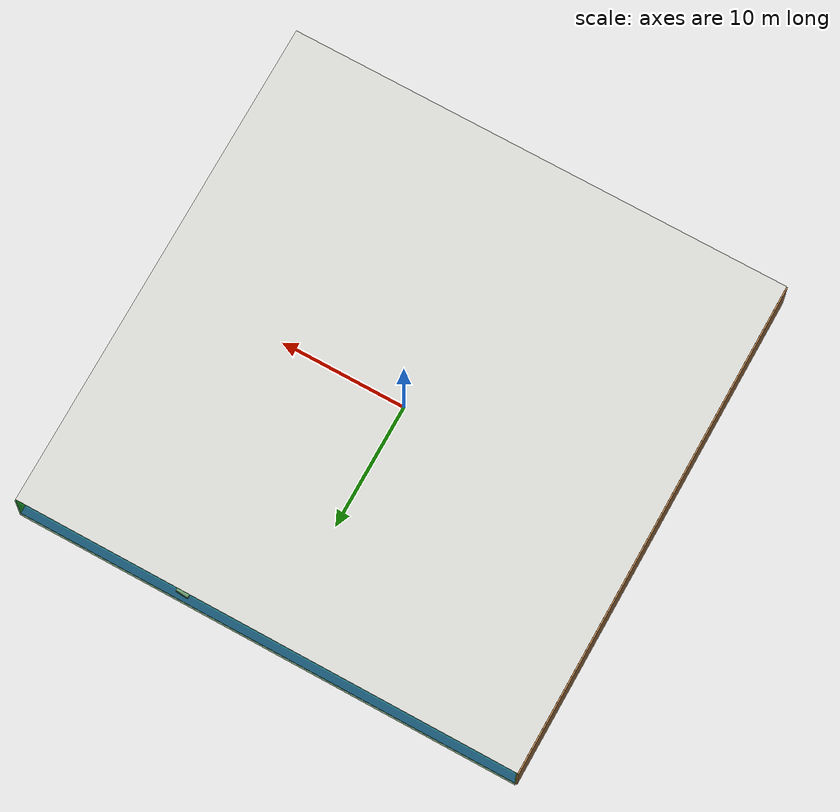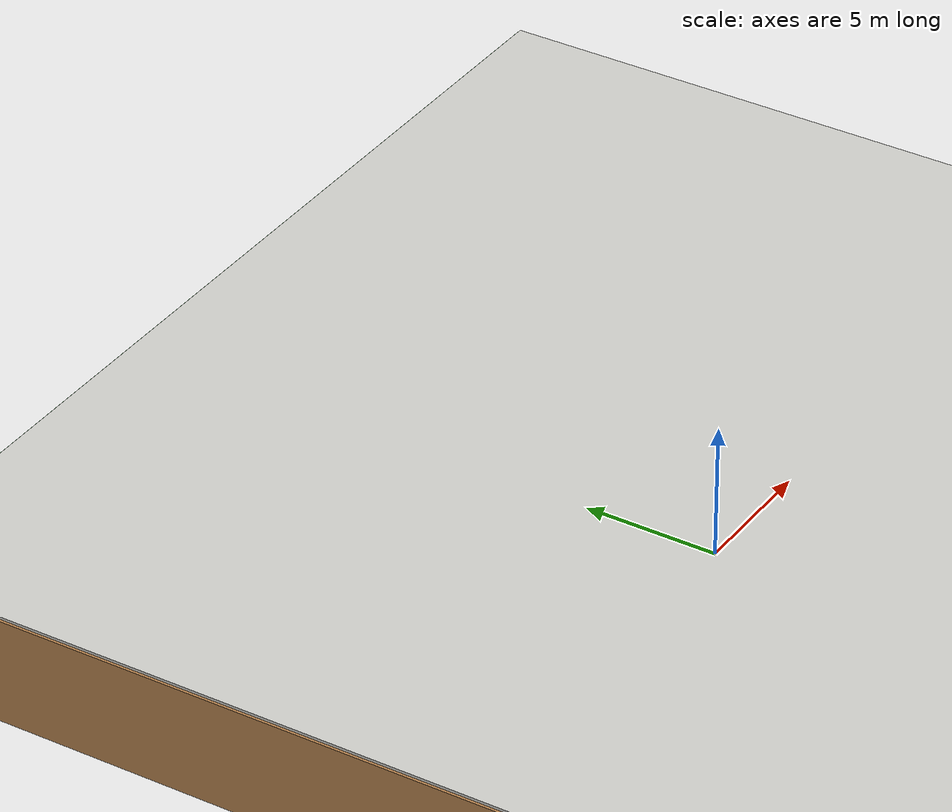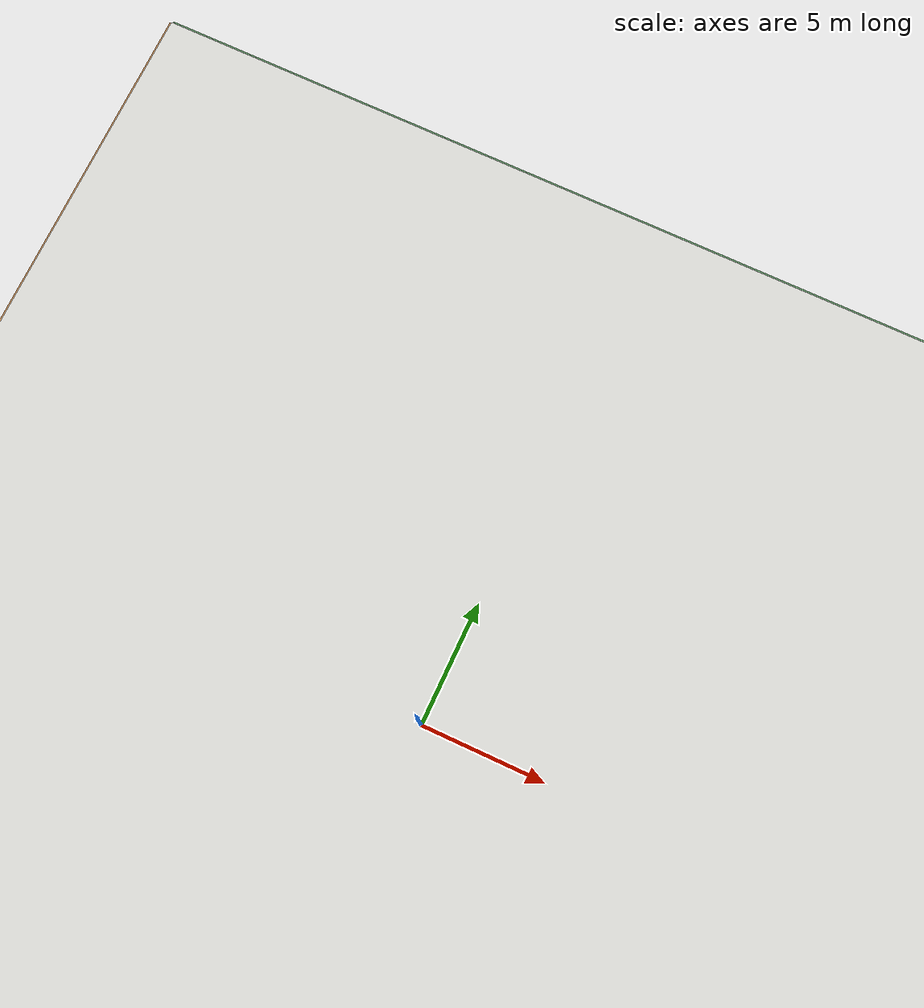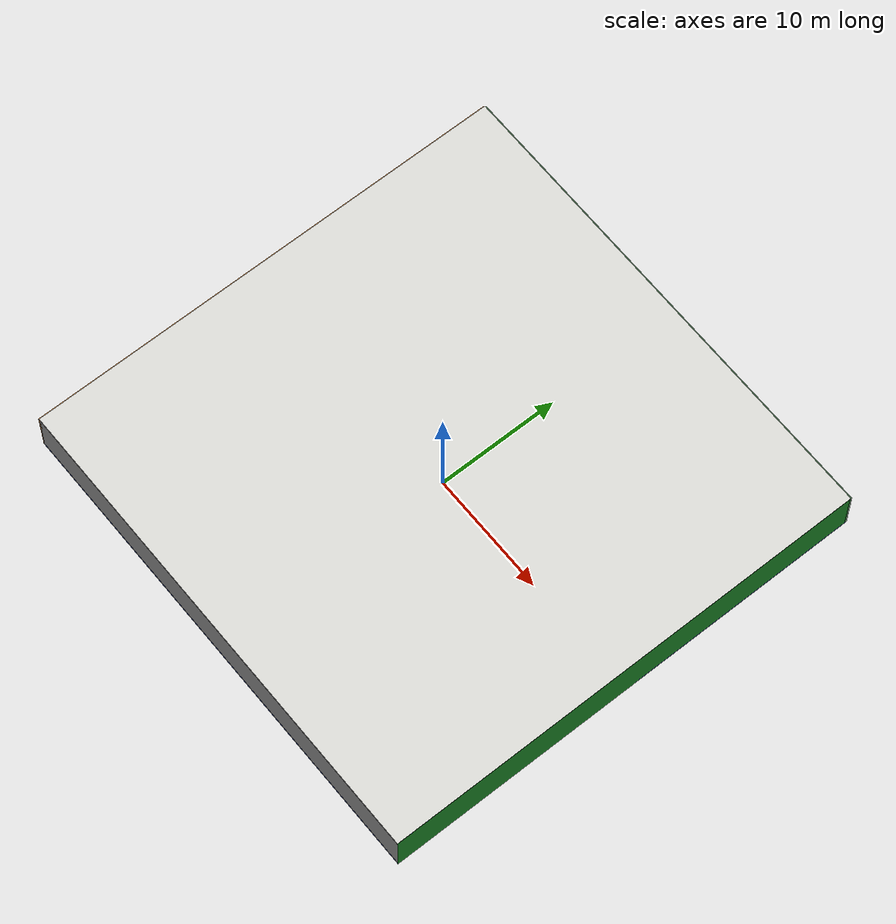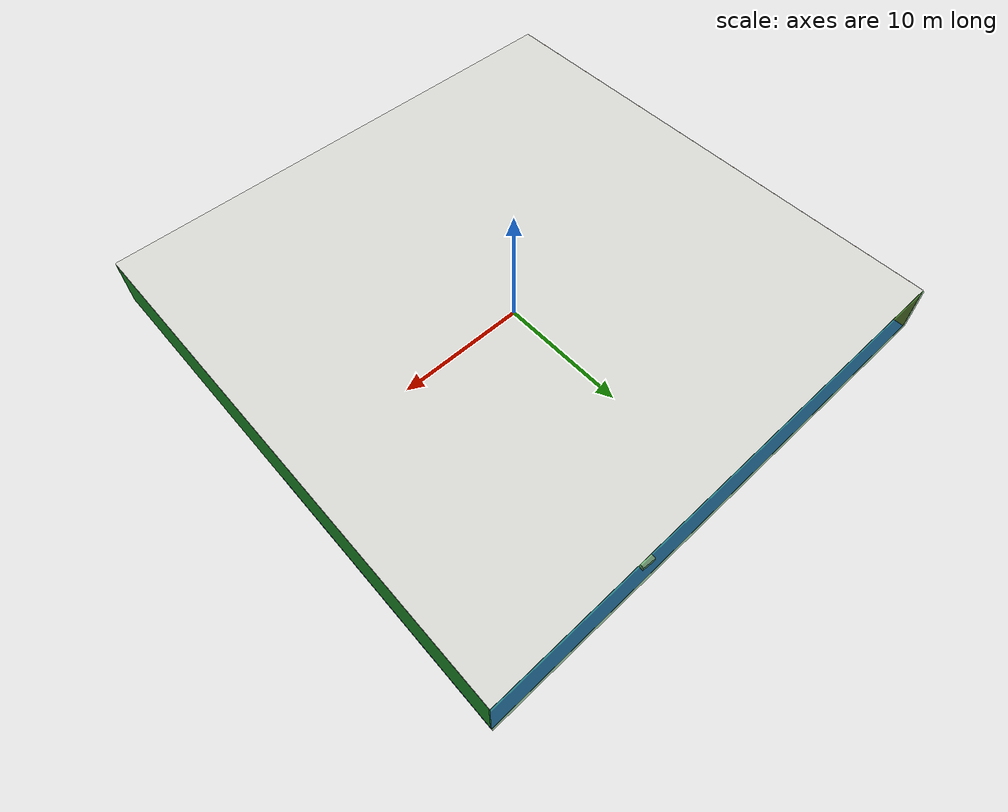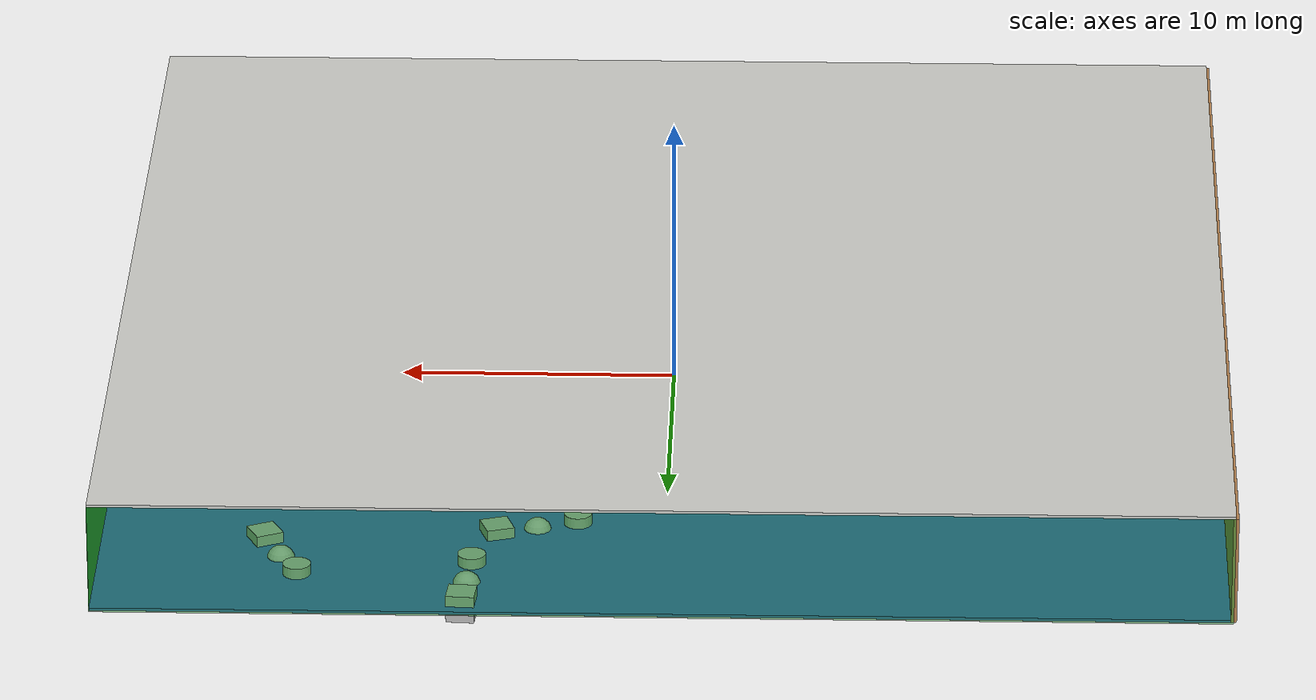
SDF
<sdf version="1.4">
 <world name="default">
  <physics type="ode">
   <max_step_size>0.001</max_step_size>
   <real_time_factor>1</real_time_factor>
   <real_time_update_rate>1000</real_time_update_rate>
   <gravity>0 0 -9.8</gravity>
  </physics>
  <scene><ambient>0.4 0.4 0.4 1</ambient><background>0.7 0.7 0.7 1</background><shadows>1</shadows></scene>
  <model name="Surrounding">
   <static>1</static>
   <link name="Ceiling">
    <collision name="Ceiling_Collision"><geometry><box><size>40 40 0.1</size></box></geometry></collision>
    <visual name="Ceiling_Visual">
     <geometry><box><size>40 40 0.1</size></box></geometry>
     <material>
      <script><uri>file://media/materials/scripts/gazebo.material</uri><name>Gazebo/CeilingTiled</name></script>
     </material>
    </visual>
    <pose>0 0 4.05 0 0 0</pose>
   </link>
   <link name="Wall_South">
    <collision name="Wall_South_Collision">
     <geometry><box><size>40 0 4</size></box></geometry>
     <pose>0 0 2 0 -0 0</pose>
    </collision>
    <visual name="Wall_South_Visual">
     <pose>0 0 2 0 -0 0</pose>
     <geometry><box><size>40 0 4</size></box></geometry>
     <material>
      <script><uri>file://media/materials/scripts/gazebo.material</uri><name>Gazebo/Grey</name></script>
     </material>
    </visual>
    <velocity_decay><linear>0</linear><angular>0</angular></velocity_decay>
    <pose>0 -20 0 0 -0 0</pose>
   </link>
   <link name="Wall_East">
    <collision name="Wall_21_Collision">
     <geometry><box><size>40 0 4</size></box></geometry>
     <pose>0 0 2 0 -0 0</pose>
    </collision>
    <visual name="Wall_21_Visual">
     <pose>0 0 2 0 -0 0</pose>
     <geometry><box><size>40 0 4</size></box></geometry>
     <material>
      <script><uri>file://media/materials/scripts/gazebo.material</uri><name>Gazebo/Green</name></script>
     </material>
    </visual>
    <velocity_decay><linear>0</linear><angular>0</angular></velocity_decay>
    <pose>20 0 0 0 -0 1.5708</pose>
   </link>
   <link name="Wall_North">
    <collision name="Wall_22_Collision">
     <geometry><box><size>40 0.2 4</size></box></geometry>
     <pose>0 0 2 0 -0 0</pose>
    </collision>
    <visual name="Wall_22_Visual">
     <pose>0 0 2 0 -0 0</pose>
     <geometry><box><size>40 0.2 4</size></box></geometry>
     <material>
      <script><uri>file://media/materials/scripts/gazebo.material</uri><name>Gazebo/GreenTransparent</name></script>
     </material>
    </visual>
    <velocity_decay><linear>0</linear><angular>0</angular></velocity_decay>
    <pose>0 20 0 0 -0 0</pose>
   </link>
   <link name="Wall_West">
    <collision name="Wall_23_Collision">
     <geometry><box><size>40 0.2 4</size></box></geometry>
     <pose>0 0 2 0 -0 0</pose>
    </collision>
    <visual name="Wall_23_Visual">
     <pose>0 0 2 0 -0 0</pose>
     <geometry><box><size>40 0.2 4</size></box></geometry>
     <material>
      <script><uri>file://media/materials/scripts/gazebo.material</uri><name>Gazebo/Wood</name></script>
     </material>
    </visual>
    <velocity_decay><linear>0</linear><angular>0</angular></velocity_decay>
    <pose>-20 0 0 0 0 -1.5708</pose>
   </link>
   <link name="Ground_link">
    <collision name="collision">
     <pose>0 0 .05 0 -0 0</pose>
     <geometry><box><size>40 40 0.1</size></box></geometry>
    </collision>
    <visual name="visual">
     <pose>0 0 .05 0 -0 0</pose>
     <geometry><box><size>40 40 0.1</size></box></geometry>
     <material>
      <script><uri>file://media/materials/scripts/gazebo.material</uri><name>Gazebo/BlueGlow</name></script>
     </material>
    </visual>
   </link>
   <static>1</static>
  </model>
  <spherical_coordinates>
   <surface_model>EARTH_WGS84</surface_model>
   <latitude_deg>0</latitude_deg>
   <longitude_deg>0</longitude_deg>
   <elevation>0</elevation>
   <heading_deg>0</heading_deg>
  </spherical_coordinates>
  <light name="lightball_0" type="diffuse">
   <diffuse>0.8 0.8 0.8 1</diffuse>
   <specular>0.2 0.2 0.2 1</specular>
   <attenuation>
    <range>100</range>
    <constant>0.7</constant>
    <linear>0.01</linear>
    <quadratic>0.001</quadratic>
   </attenuation>
   <direction>-0.5 0.1 -0.9</direction>
   <pose>9.72297077495 -6.86279532287 1.45989051367 0 0 0</pose>
  </light>
  <light name="lightball_1" type="diffuse">
   <diffuse>0.8 0.8 0.8 1</diffuse>
   <specular>0.2 0.2 0.2 1</specular>
   <attenuation>
    <range>100</range>
    <constant>0.7</constant>
    <linear>0.01</linear>
    <quadratic>0.001</quadratic>
   </attenuation>
   <direction>-0.5 0.1 -0.9</direction>
   <pose>19.6985392056 3.57513549707 0.541262726181 0 0 0</pose>
  </light>
  <light name="lightball_2" type="diffuse">
   <diffuse>0.8 0.8 0.8 1</diffuse>
   <specular>0.2 0.2 0.2 1</specular>
   <attenuation>
    <range>100</range>
    <constant>0.7</constant>
    <linear>0.01</linear>
    <quadratic>0.001</quadratic>
   </attenuation>
   <direction>-0.5 0.1 -0.9</direction>
   <pose>13.5091712023 10.6739206555 1.60500635643 0 0 0</pose>
  </light>
  <light name="lightball_3" type="diffuse">
   <diffuse>0.8 0.8 0.8 1</diffuse>
   <specular>0.2 0.2 0.2 1</specular>
   <attenuation>
    <range>100</range>
    <constant>0.7</constant>
    <linear>0.01</linear>
    <quadratic>0.001</quadratic>
   </attenuation>
   <direction>-0.5 0.1 -0.9</direction>
   <pose>0.225593692835 13.0537255209 2.02609768945 0 0 0</pose>
  </light>
  <light name="lightball_4" type="diffuse">
   <diffuse>0.8 0.8 0.8 1</diffuse>
   <specular>0.2 0.2 0.2 1</specular>
   <attenuation>
    <range>100</range>
    <constant>0.7</constant>
    <linear>0.01</linear>
    <quadratic>0.001</quadratic>
   </attenuation>
   <direction>-0.5 0.1 -0.9</direction>
   <pose>0.081516650642 14.6716604873 1.85656207667 0 0 0</pose>
  </light>
  <light name="lightball_5" type="diffuse">
   <diffuse>0.8 0.8 0.8 1</diffuse>
   <specular>0.2 0.2 0.2 1</specular>
   <attenuation>
    <range>100</range>
    <constant>0.7</constant>
    <linear>0.01</linear>
    <quadratic>0.001</quadratic>
   </attenuation>
   <direction>-0.5 0.1 -0.9</direction>
   <pose>19.4910968108 6.5510276498 1.28765811684 0 0 0</pose>
  </light>
  <light name="lightball_6" type="diffuse">
   <diffuse>0.8 0.8 0.8 1</diffuse>
   <specular>0.2 0.2 0.2 1</specular>
   <attenuation>
    <range>100</range>
    <constant>0.7</constant>
    <linear>0.01</linear>
    <quadratic>0.001</quadratic>
   </attenuation>
   <direction>-0.5 0.1 -0.9</direction>
   <pose>-2.6706213986 -14.1622967265 2.22616711514 0 0 0</pose>
  </light>
  <light name="lightball_7" type="diffuse">
   <diffuse>0.8 0.8 0.8 1</diffuse>
   <specular>0.2 0.2 0.2 1</specular>
   <attenuation>
    <range>100</range>
    <constant>0.7</constant>
    <linear>0.01</linear>
    <quadratic>0.001</quadratic>
   </attenuation>
   <direction>-0.5 0.1 -0.9</direction>
   <pose>-0.128896358397 14.9062923011 0.806001206412 0 0 0</pose>
  </light>
  <include><uri>model://cabinet</uri><pose>-17.0736786778 -8.61868791235 0 0 0 0.525666619623</pose></include>
  <include>
   <uri>model://textured_shapes</uri>
   <pose>-17.9733366837 -5.65479564304 0 0 0 0.472407520563</pose>
  </include>
  <include><uri>model://cabinet</uri><pose>-17.5971882586 2.57635632529 0 0 0 1.81800791735</pose></include>
  <include><uri>model://table</uri><pose>-13.4796590953 -13.6991616824 0 0 0 0.593545890314</pose></include>
  <include>
   <uri>model://construction_cone</uri>
   <pose>-13.5096377126 -8.96313431617 0 0 0 2.3620554525</pose>
  </include>
  <include>
   <uri>model://robocup_3Dsim_goal</uri>
   <pose>-11.5436818781 -18.5719212204 0 0 0 1.20544347544</pose>
  </include>
  <include><uri>model://table</uri><pose>-11.6911756177 1.31064865337 0 0 0 2.76302509401</pose></include>
  <include>
   <uri>model://textured_shapes</uri>
   <pose>-10.7836491404 3.43691029179 0 0 0 2.5479890822</pose>
  </include>
  <include>
   <uri>model://textured_shapes</uri>
   <pose>-8.95282483019 -10.9839403125 0 0 0 2.04443328304</pose>
  </include>
  <include>
   <uri>model://textured_shapes</uri>
   <pose>-1.83929498749 7.43143675667 0 0 0 2.82529545301</pose>
  </include>
  <include>
   <uri>model://construction_cone</uri>
   <pose>0.357107689711 -3.37618870119 0 0 0 1.46882025859</pose>
  </include>
  <include>
   <uri>model://robocup_3Dsim_goal</uri>
   <pose>0.88059348799 9.01290875133 0 0 0 2.25582204889</pose>
  </include>
  <include><uri>model://cabinet</uri><pose>2.61148182627 -0.121394882266 0 0 0 1.34304273319</pose></include>
  <include>
   <uri>model://textured_shapes</uri>
   <pose>4.54540367143 13.2504693349 0 0 0 1.88742927088</pose>
  </include>
  <include>
   <uri>model://textured_shapes</uri>
   <pose>7.06612950232 -12.2560733754 0 0 0 1.60031334321</pose>
  </include>
  <include>
   <uri>model://robocup_3Dsim_goal</uri>
   <pose>6.31872135959 1.39540556962 0 0 0 0.834492709664</pose>
  </include>
  <include>
   <uri>model://textured_shapes</uri>
   <pose>6.88400211161 17.6392132187 0 0 0 3.0637878389</pose>
  </include>
  <include><uri>model://cabinet</uri><pose>8.84665571497 6.79696893188 0 0 0 1.79513565991</pose></include>
  <include><uri>model://table</uri><pose>11.5192250299 -16.3881062474 0 0 0 2.35451633423</pose></include>
  <include>
   <uri>model://textured_shapes</uri>
   <pose>13.5361774426 15.7215386631 0 0 0 0.44325832435</pose>
  </include>
  <include>
   <uri>model://textured_shapes</uri>
   <pose>14.7375706892 7.56348709893 0 0 0 0.294045220194</pose>
  </include>
  <include>
   <uri>model://construction_cone</uri>
   <pose>18.9611357766 -17.6634984809 0 0 0 0.282818594366</pose>
  </include>
  <include>
   <uri>model://robocup_3Dsim_goal</uri>
   <pose>17.5116577592 -9.54480987963 0 0 0 0.197132934219</pose>
  </include>
  <include><uri>model://cabinet</uri><pose>18.6007215709 7.49444624857 0 0 0 1.56633138197</pose></include>
  <include><uri>model://cabinet</uri><pose>18.3614891357 10.5415266849 0 0 0 1.9279836376</pose></include>
 </world>
</sdf>

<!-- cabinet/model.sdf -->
<sdf version="1.5">
  <model name="cabinet">
    <static>true</static>
    <link name="cabinet_bottom_plate">
      <inertial>
        <pose>0 0 -1 0 0 0</pose>
        <inertia>
          <ixx>2.050000</ixx>
          <ixy>0</ixy>
          <ixz>0</ixz>
          <iyy>2.050000</iyy>
          <iyz>0</iyz>
          <izz>2.050000</izz>
        </inertia>
        <mass>25.000000</mass>
      </inertial>
      <collision name="cabinet_bottom_plate_geom">
        <pose>0 0 0.010000 0 0 0</pose>
        <geometry>
          <box>
            <size>0.450000 0.450000 0.020000</size>
          </box>
        </geometry>
      </collision>
      <visual name="cabinet_bottom_plate_geom_visual">
        <pose>0 0 0.010000 0 0 0</pose>
        <geometry>
          <box>
            <size>0.450000 0.450000 0.020000</size>
          </box>
        </geometry>
        <material>
          <script>
            <uri>model://media/materials/scripts/gazebo.material</uri>
            <name>Gazebo/Wood</name>
          </script>
        </material>
      </visual>
      <collision name="cabinet_bottom_plate_geom_cabinet_back_plate">
        <pose>0.235000 0 0.510000 0 0 0</pose>
        <geometry>
          <box>
            <size>0.020000 0.450000 1.020000</size>
          </box>
        </geometry>
      </collision>
      <visual name="cabinet_bottom_plate_geom_cabinet_back_plate_visual">
        <pose>0.235000 0 0.510000 0 0 0</pose>
        <geometry>
          <box>
            <size>0.020000 0.450000 1.020000</size>
          </box>
        </geometry>
        <material>
          <script>
            <uri>model://media/materials/scripts/gazebo.material</uri>
            <name>Gazebo/Wood</name>
          </script>
        </material>
      </visual>
      <collision name="cabinet_bottom_plate_geom_cabinet_left_plate">
        <pose>0 0.235000 0.510000 0 0 0</pose>
        <geometry>
          <box>
            <size>0.450000 0.020000 1.020000</size>
          </box>
        </geometry>
      </collision>
      <visual name="cabinet_bottom_plate_geom_cabinet_left_plate_visual">
        <pose>0 0.235000 0.510000 0 0 0</pose>
        <geometry>
          <box>
            <size>0.450000 0.020000 1.020000</size>
          </box>
        </geometry>
        <material>
          <script>
            <uri>model://media/materials/scripts/gazebo.material</uri>
            <name>Gazebo/Wood</name>
          </script>
        </material>
      </visual>
      <collision name="cabinet_bottom_plate_geom_cabinet_middle_plate">
        <pose>0 0 0.510000 0 0 0</pose>
        <geometry>
          <box>
            <size>0.450000 0.450000 0.020000</size>
          </box>
        </geometry>
      </collision>
      <visual name="cabinet_bottom_plate_geom_cabinet_middle_plate_visual">
        <pose>0 0 0.510000 0 0 0</pose>
        <geometry>
          <box>
            <size>0.450000 0.450000 0.020000</size>
          </box>
        </geometry>
        <material>
          <script>
            <uri>model://media/materials/scripts/gazebo.material</uri>
            <name>Gazebo/Wood</name>
          </script>
        </material>
      </visual>
      <collision name="cabinet_bottom_plate_geom_cabinet_right_plate">
        <pose>0 -0.235000 0.510000 0 0 0</pose>
        <geometry>
          <box>
            <size>0.450000 0.020000 1.020000</size>
          </box>
        </geometry>
      </collision>
      <visual name="cabinet_bottom_plate_geom_cabinet_right_plate_visual">
        <pose>0 -0.235000 0.510000 0 0 0</pose>
        <geometry>
          <box>
            <size>0.450000 0.020000 1.020000</size>
          </box>
        </geometry>
        <material>
          <script>
            <uri>model://media/materials/scripts/gazebo.material</uri>
            <name>Gazebo/Wood</name>
          </script>
        </material>
      </visual>
      <collision name="cabinet_bottom_plate_geom_cabinet_top_plate">
        <pose>0 0 1.010000 0 0 0</pose>
        <geometry>
          <box>
            <size>0.450000 0.450000 0.020000</size>
          </box>
        </geometry>
      </collision>
      <visual name="cabinet_bottom_plate_geom_cabinet_top_plate_visual">
        <pose>0 0 1.010000 0 0 0</pose>
        <geometry>
          <box>
            <size>0.450000 0.450000 0.020000</size>
          </box>
        </geometry>
        <material>
          <script>
            <uri>model://media/materials/scripts/gazebo.material</uri>
            <name>Gazebo/Wood</name>
          </script>
        </material>
      </visual>
    </link>
  </model>
</sdf>

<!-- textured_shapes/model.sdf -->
<sdf version="1.6">
  <model name="textured_shapes">
    <pose>0 0 0.5 0 0 0</pose>
    <link name="box">
      <pose>0 -1.5 0 0 0 0</pose>
      <collision name="collision">
        <geometry>
          <box>
            <size>1 1 1</size>
          </box>
        </geometry>
      </collision>
      <visual name="visual">
        <geometry>
          <box>
            <size>1 1 1</size>
          </box>
        </geometry>
        <material>
          <script>
            <uri>model://../model_source/models/textured_shapes/materials/scripts</uri>
            <uri>model://../model_source/models/textured_shapes/materials/textures</uri>
            <name>TexturedShape/Squares</name>
          </script>
        </material>
      </visual>
    </link>
    <link name="sphere">
      <collision name="collision">
        <geometry>
          <sphere>
            <radius>0.5</radius>
          </sphere>
        </geometry>
      </collision>
      <visual name="visual">
        <geometry>
          <sphere>
            <radius>0.5</radius>
          </sphere>
        </geometry>
        <material>
          <script>
            <uri>model://../model_source/models/textured_shapes/materials/scripts</uri>
            <uri>model://../model_source/models/textured_shapes/materials/textures</uri>
            <name>TexturedShape/Squares</name>
          </script>
        </material>
      </visual>
    </link>
    <link name="cylinder">
      <pose>0 1.5 0 0 0 0</pose>
      <collision name="collision">
        <geometry>
          <cylinder>
            <radius>0.5</radius>
            <length>1</length>
          </cylinder>
        </geometry>
      </collision>
      <visual name="visual">
        <geometry>
          <cylinder>
            <radius>0.5</radius>
            <length>1</length>
          </cylinder>
        </geometry>
        <material>
          <script>
            <uri>model://../model_source/models/textured_shapes/materials/scripts</uri>
            <uri>model://../model_source/models/textured_shapes/materials/textures</uri>
            <name>TexturedShape/Squares</name>
          </script>
        </material>
      </visual>
    </link>
  </model>
</sdf>

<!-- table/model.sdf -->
<sdf version="1.5">
  <model name="table">
    <static>true</static>
    <link name="link">
      <collision name="surface">
        <pose>0 0 1.0 0 0 0</pose>
        <geometry>
          <box>
            <size>1.5 0.8 0.03</size>
          </box>
        </geometry>
        <surface>
          <friction>
            <ode>
              <mu>0.6</mu>
              <mu2>0.6</mu2>
            </ode>
          </friction>
        </surface>
      </collision>
      <visual name="visual1">
        <pose>0 0 1.0 0 0 0</pose>
        <geometry>
          <box>
            <size>1.5 0.8 0.03</size>
          </box>
        </geometry>
        <material>
          <script>
            <uri>model://media/materials/scripts/gazebo.material</uri>
            <name>Gazebo/Wood</name>
          </script>
        </material>
      </visual>
      <collision name="front_left_leg">
        <pose>0.68 0.38 0.5 0 0 0</pose>
        <geometry>
          <cylinder>
            <radius>0.02</radius>
            <length>1.0</length>
          </cylinder>
        </geometry>
      </collision>
      <visual name="front_left_leg">
        <pose>0.68 0.38 0.5 0 0 0</pose>
        <geometry>
          <cylinder>
            <radius>0.02</radius>
            <length>1.0</length>
          </cylinder>
        </geometry>
        <material>
          <script>
            <uri>model://media/materials/scripts/gazebo.material</uri>
            <name>Gazebo/Grey</name>
          </script>
        </material>
      </visual>
      <collision name="front_right_leg">
        <pose>0.68 -0.38 0.5 0 0 0</pose>
        <geometry>
          <cylinder>
            <radius>0.02</radius>
            <length>1.0</length>
          </cylinder>
        </geometry>
      </collision>
      <visual name="front_right_leg">
        <pose>0.68 -0.38 0.5 0 0 0</pose>
        <geometry>
          <cylinder>
            <radius>0.02</radius>
            <length>1.0</length>
          </cylinder>
        </geometry>
        <material>
          <script>
            <uri>model://media/materials/scripts/gazebo.material</uri>
            <name>Gazebo/Grey</name>
          </script>
        </material>
      </visual>
      <collision name="back_right_leg">
        <pose>-0.68 -0.38 0.5 0 0 0</pose>
        <geometry>
          <cylinder>
            <radius>0.02</radius>
            <length>1.0</length>
          </cylinder>
        </geometry>
      </collision>
      <visual name="back_right_leg">
        <pose>-0.68 -0.38 0.5 0 0 0</pose>
        <geometry>
          <cylinder>
            <radius>0.02</radius>
            <length>1.0</length>
          </cylinder>
        </geometry>
        <material>
          <script>
            <uri>model://media/materials/scripts/gazebo.material</uri>
            <name>Gazebo/Grey</name>
          </script>
        </material>
      </visual>
      <collision name="back_left_leg">
        <pose>-0.68 0.38 0.5 0 0 0</pose>
        <geometry>
          <cylinder>
            <radius>0.02</radius>
            <length>1.0</length>
          </cylinder>
        </geometry>
      </collision>
      <visual name="back_left_leg">
        <pose>-0.68 0.38 0.5 0 0 0</pose>
        <geometry>
          <cylinder>
            <radius>0.02</radius>
            <length>1.0</length>
          </cylinder>
        </geometry>
        <material>
          <script>
            <uri>model://media/materials/scripts/gazebo.material</uri>
            <name>Gazebo/Grey</name>
          </script>
        </material>
      </visual>
    </link>
  </model>
</sdf>

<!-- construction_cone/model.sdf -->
<sdf version="1.5">
  <model name="Construction Cone">
    <link name="link">
      <collision name="collision">
        <geometry>
          <mesh>
            <scale>10 10 10</scale>
            <uri>file://isr-testbed/construction_cone/meshes/construction_cone.dae</uri>
          </mesh>
        </geometry>
      </collision>
      <visual name="visual">
        <geometry>
          <mesh>
            <scale>10 10 10</scale>
            <uri>file://isr-testbed/construction_cone/meshes/construction_cone.dae</uri>
          </mesh>
        </geometry>
      </visual>
    </link>
  </model>
</sdf>

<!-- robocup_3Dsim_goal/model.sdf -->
<sdf version="1.5">
  <model name="robocup_3d_goal">
    <static>true</static>
    <link name="left_post">
      <pose>0 1.05 0.45 0 0 0</pose>
      <collision name="collision">
        <geometry>
          <cylinder>
            <radius>0.05</radius>
            <length>0.9</length>
          </cylinder>
        </geometry>
      </collision>
      <visual name="visual">
        <geometry>
          <cylinder>
            <radius>0.05</radius>
            <length>0.9</length>
          </cylinder>
        </geometry>
        <material>
          <script>
            <uri>file://media/materials/scripts/gazebo.material</uri>
            <name>Gazebo/ZincYellow</name>
          </script>
        </material>
      </visual>
    </link>
    <link name="left_support_horiz_lower">
      <pose>0.30 1.05 0.01 0 0 0</pose>
      <collision name="collision">
        <geometry>
          <box>
            <size>0.50 0.02 0.02</size>
          </box>
        </geometry>
      </collision>
      <visual name="visual">
        <geometry>
          <box>
            <size>0.50 0.02 0.02</size>
          </box>
        </geometry>
        <material>
          <script>
            <uri>file://media/materials/scripts/gazebo.material</uri>
            <name>Gazebo/White</name>
          </script>
        </material>
      </visual>
    </link>
    <link name="left_support_horiz_upper">
      <pose>0.30 1.05 0.79 0 0 0</pose>
      <collision name="collision">
        <geometry>
          <box>
            <size>0.50 0.02 0.02</size>
          </box>
        </geometry>
      </collision>
      <visual name="visual">
        <geometry>
          <box>
            <size>0.50 0.02 0.02</size>
          </box>
        </geometry>
        <material>
          <script>
            <uri>file://media/materials/scripts/gazebo.material</uri>
            <name>Gazebo/White</name>
          </script>
        </material>
      </visual>
    </link>
    <link name="left_support_vertical">
      <pose>0.56 1.05 0.4 0 1.5708 0</pose>
      <collision name="collision">
        <geometry>
          <box>
            <size>0.80 0.02 0.02</size>
          </box>
        </geometry>
      </collision>
      <visual name="visual">
        <geometry>
          <box>
            <size>0.80 0.02 0.02</size>
          </box>
        </geometry>
        <material>
          <script>
            <uri>file://media/materials/scripts/gazebo.material</uri>
            <name>Gazebo/White</name>
          </script>
        </material>
      </visual>
    </link>
    <link name="right_support_horiz_lower">
      <pose>0.30 -1.05 0.01 0 0 0</pose>
      <collision name="collision">
        <geometry>
          <box>
            <size>0.50 0.02 0.02</size>
          </box>
        </geometry>
      </collision>
      <visual name="visual">
        <geometry>
          <box>
            <size>0.50 0.02 0.02</size>
          </box>
        </geometry>
        <material>
          <script>
            <uri>file://media/materials/scripts/gazebo.material</uri>
            <name>Gazebo/White</name>
          </script>
        </material>
      </visual>
    </link>
    <link name="right_support_horiz_upper">
      <pose>0.30 -1.05 0.79 0 0 0</pose>
      <collision name="collision">
        <geometry>
          <box>
            <size>0.50 0.02 0.02</size>
          </box>
        </geometry>
      </collision>
      <visual name="visual">
        <geometry>
          <box>
            <size>0.50 0.02 0.02</size>
          </box>
        </geometry>
        <material>
          <script>
            <uri>file://media/materials/scripts/gazebo.material</uri>
            <name>Gazebo/White</name>
          </script>
        </material>
      </visual>
    </link>
    <link name="right_support_vertical">
      <pose>0.56 -1.05 0.4 0 1.5708 0</pose>
      <collision name="collision">
        <geometry>
          <box>
            <size>0.80 0.02 0.02</size>
          </box>
        </geometry>
      </collision>
      <visual name="visual">
        <geometry>
          <box>
            <size>0.80 0.02 0.02</size>
          </box>
        </geometry>
        <material>
          <script>
            <uri>file://media/materials/scripts/gazebo.material</uri>
            <name>Gazebo/White</name>
          </script>
        </material>
      </visual>
    </link>
    <link name="center_support_horiz_lower">
      <pose>0.56 0 0.01 0 1.5708 0</pose>
      <collision name="collision">
        <geometry>
          <box>
            <size>0.02 2.08 0.02</size>
          </box>
        </geometry>
      </collision>
      <visual name="visual">
        <geometry>
          <box>
            <size>0.02 2.08 0.02</size>
          </box>
        </geometry>
        <material>
          <script>
            <uri>file://media/materials/scripts/gazebo.material</uri>
            <name>Gazebo/White</name>
          </script>
        </material>
      </visual>
    </link>
    <link name="center_support_horiz_upper">
      <pose>0.56 0 0.79 0 1.5708 0</pose>
      <collision name="collision">
        <geometry>
          <box>
            <size>0.02 2.08 0.02</size>
          </box>
        </geometry>
      </collision>
      <visual name="visual">
        <geometry>
          <box>
            <size>0.02 2.08 0.02</size>
          </box>
        </geometry>
        <material>
          <script>
            <uri>file://media/materials/scripts/gazebo.material</uri>
            <name>Gazebo/White</name>
          </script>
        </material>
      </visual>
    </link>
    <link name="right_post">
      <pose>0 -1.05 0.45 0 0 0</pose>
      <collision name="collision">
        <geometry>
          <cylinder>
            <radius>0.05</radius>
            <length>0.9</length>
          </cylinder>
        </geometry>
      </collision>
      <visual name="visual">
        <geometry>
          <cylinder>
            <radius>0.05</radius>
            <length>0.9</length>
          </cylinder>
        </geometry>
        <material>
          <script>
            <uri>file://media/materials/scripts/gazebo.material</uri>
            <name>Gazebo/ZincYellow</name>
          </script>
        </material>
      </visual>
    </link>
    <link name="crossbar">
      <pose>0 0 0.85 1.57 1.57 0</pose>
      <collision name="collision">
        <geometry>
          <cylinder>
            <radius>0.05</radius>
            <length>2.0</length>
          </cylinder>
        </geometry>
      </collision>
      <visual name="visual">
        <geometry>
          <cylinder>
            <radius>0.05</radius>
            <length>2.0</length>
          </cylinder>
        </geometry>
        <material>
          <script>
            <uri>file://media/materials/scripts/gazebo.material</uri>
            <name>Gazebo/ZincYellow</name>
          </script>
        </material>
      </visual>
    </link>
    <link name="center_net">
      <pose>0.56 0 0.40 0 0 0</pose>
      <collision name="collision">
        <geometry>
          <box>
            <size>0.01 2.1 0.80</size>
          </box>
        </geometry>
      </collision>
      <visual name="visual">
        <geometry>
          <box>
            <size>0.01 2.1 0.80</size>
          </box>
        </geometry>
        <material>
          <script>
            <uri>model://../model_source/models/robocup09_spl_field/materials/scripts/</uri>
            <uri>model://../model_source/models/robocup09_spl_field/materials/textures/</uri>
            <name>RoboCup/Net</name>
          </script>
        </material>
      </visual>
    </link>
    <link name="left_net">
      <pose>0.30 1.05 0.40 0 0 0</pose>
      <collision name="collision">
        <geometry>
          <box>
            <size>0.50 0.01 0.76</size>
          </box>
        </geometry>
      </collision>
      <visual name="visual">
        <geometry>
          <box>
            <size>0.50 0.01 0.76</size>
          </box>
        </geometry>
        <material>
          <script>
            <uri>model://../model_source/models/robocup09_spl_field/materials/scripts/</uri>
            <uri>model://../model_source/models/robocup09_spl_field/materials/textures/</uri>
            <name>RoboCup/Net</name>
          </script>
        </material>
      </visual>
    </link>
    <link name="right_net">
      <pose>0.30 -1.05 0.40 0 0 0</pose>
      <collision name="collision">
        <geometry>
          <box>
            <size>0.50 0.01 0.76</size>
          </box>
        </geometry>
      </collision>
      <visual name="visual">
        <geometry>
          <box>
            <size>0.50 0.01 0.76</size>
          </box>
        </geometry>
        <material>
          <script>
            <uri>model://../model_source/models/robocup09_spl_field/materials/scripts/</uri>
            <uri>model://../model_source/models/robocup09_spl_field/materials/textures/</uri>
            <name>RoboCup/Net</name>
          </script>
        </material>
      </visual>
    </link>
  </model>
</sdf>
